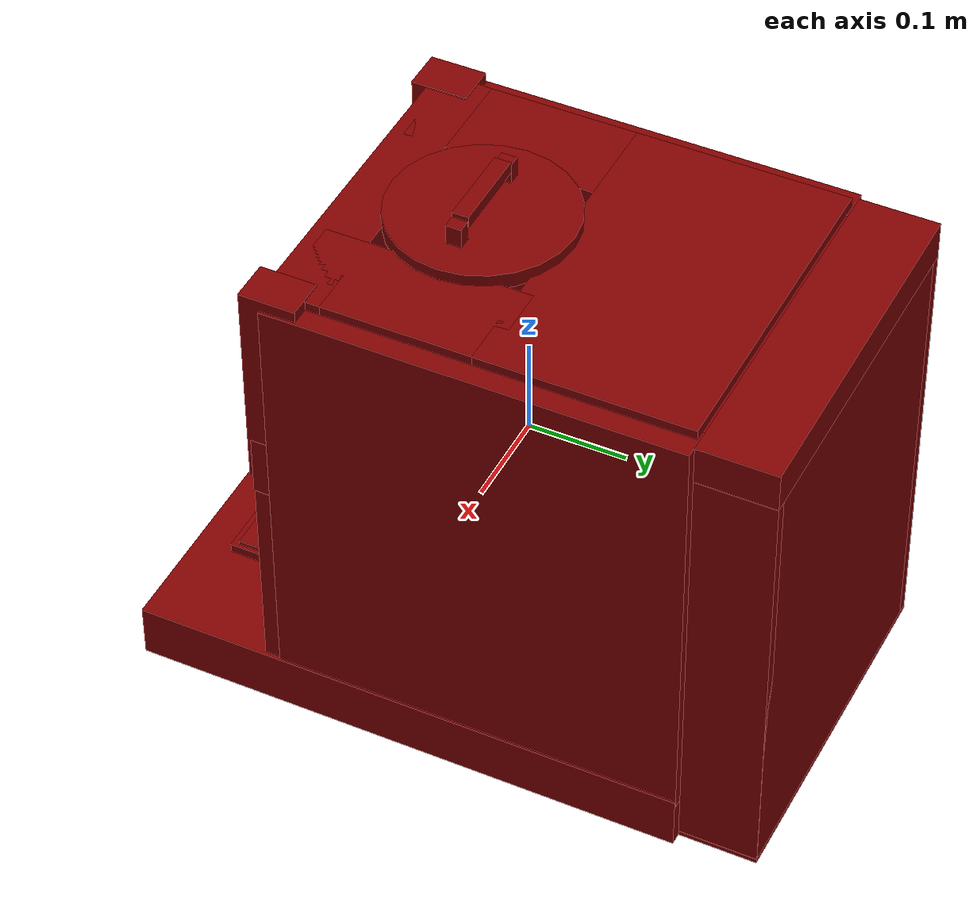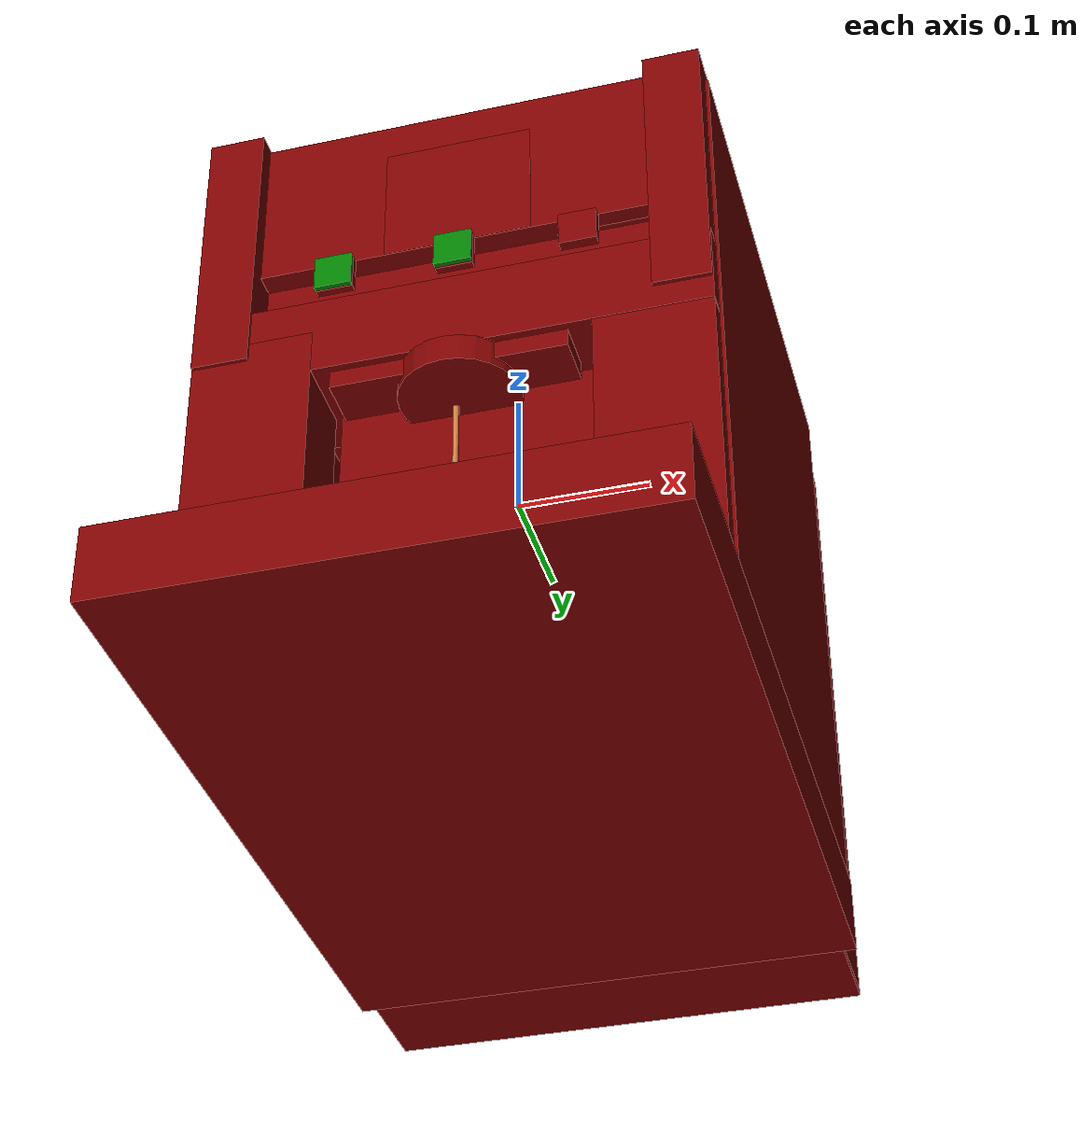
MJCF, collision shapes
<?xml version='1.0' encoding='UTF-8'?>
<mujoco model="model">
  <compiler angle="radian"/>
  <asset>
    <mesh file="visuals/Body001.obj" name="Body001_vis"/>
    <mesh file="visuals/Button001.obj" name="Button001_vis"/>
    <mesh file="visuals/Button002.obj" name="Button002_vis"/>
    <mesh file="visuals/Button003.obj" name="Button003_vis"/>
    <mesh file="visuals/Container001_Clear.obj" name="Container001_Clear_vis"/>
    <mesh file="visuals/Lid001.obj" name="Lid001_vis"/>
    <mesh file="visuals/Lid002.obj" name="Lid002_vis"/>
    <mesh file="visuals/Lid003_Clear.obj" name="Lid003_Clear_vis"/>
    <texture file="visuals/T_BC001.png" name="Body001_material" type="2d"/>
    <material name="Body001_material" rgba="1 1 1 1.0" texture="Body001_material" shininess="0.4472135901451111" specular="0.3103448502657381"/>
    <texture file="visuals/T_BC001.png" name="Button001_material" type="2d"/>
    <material name="Button001_material" rgba="1 1 1 1.0" texture="Button001_material" shininess="0.4472135901451111" specular="0.3103448502657381"/>
    <texture file="visuals/T_BC001.png" name="Button002_material" type="2d"/>
    <material name="Button002_material" rgba="1 1 1 1.0" texture="Button002_material" shininess="0.4472135901451111" specular="0.3103448502657381"/>
    <texture file="visuals/T_BC001.png" name="Button003_material" type="2d"/>
    <material name="Button003_material" rgba="1 1 1 1.0" texture="Button003_material" shininess="0.4472135901451111" specular="0.3103448502657381"/>
    <texture file="visuals/T_BC001.png" name="Container001_Clear_material" type="2d"/>
    <material name="Container001_Clear_material" rgba="1 1 1 0.15000000596046448" texture="Container001_Clear_material" shininess="0.4472135901451111" specular="0.3103448502657381"/>
    <texture file="visuals/T_BC001.png" name="Lid003_Clear_material" type="2d"/>
    <material name="Lid003_Clear_material" rgba="1 1 1 0.15000000596046448" texture="Lid003_Clear_material" shininess="0.4472135901451111" specular="0.3103448502657381"/>
    <texture file="visuals/T_BC001.png" name="Lid001_material" type="2d"/>
    <material name="Lid001_material" rgba="1 1 1 1.0" texture="Lid001_material" shininess="0.4472135901451111" specular="0.3103448502657381"/>
    <texture file="visuals/T_BC001.png" name="Lid002_material" type="2d"/>
    <material name="Lid002_material" rgba="1 1 1 1.0" texture="Lid002_material" shininess="0.4472135901451111" specular="0.3103448502657381"/>
  </asset>
  <default>
    <default class="visual">
      <geom conaffinity="0" contype="0" group="1" type="mesh"/>
    </default>
    <default class="collision">
      <geom group="0" rgba="0.5 0 0 0.5"/>
    </default>
    <default class="spawn">
      <geom group="0" rgba="1 1 1 0.5" contype="0" conaffinity="0"/>
      <site group="0" rgba="1 1 1 0.5"/>
    </default>
    <default class="region">
      <geom group="1" conaffinity="0" contype="0" rgba="0 1 0 0"/>
    </default>
  </default>
  <worldbody>
    <body>
      <body name="object">
        <geom class="collision" type="box" pos="-0.086563 -0.187611 0.091208" size="0.013755256310105324 0.0021139136515557766 0.01374596357345581" quat="1.0 0.0 0.0 0.0" name="start_button_1" rgba="0.0 0.5 0 0.5"/>
        <geom class="collision" type="box" pos="0.002858 -0.188588 0.091208" size="0.013755256310105324 0.0021139136515557766 0.01374596543610096" quat="1.0 0.0 0.0 0.0" name="start_button_2" rgba="0.0 0.5 0 0.5"/>
        <site type="cylinder" rgba="0.8 0.5 0.25 1" size="0.002001030370593071 0.07498573511838913" pos="-0.000071 -0.163692 -0.109714" name="coffee_liquid"/>
        <site rgba="0 0 0 0" size="0.009999999776482582 0.009999999776482582" pos="-0.000289 -0.162930 -0.177186" name="receptacle_place_site"/>
        <geom mesh="Body001_vis" type="mesh" solimp="0.998 0.998 0.001" solref="0.001 1" density="100" friction="0.95 0.3 0.1" class="visual" material="Body001_material"/>
        <geom class="collision" type="box" pos="0.000000 -0.040076 -0.244350" size="0.19233408570289612 0.28319981694221497 0.028330527245998383" quat="1.0 0.0 0.0 0.0"/>
        <geom class="collision" type="box" pos="0.174797 0.035413 0.001303" size="0.01573178358376026 0.20771101117134094 0.22518572211265564" quat="1.0 0.0 0.0 0.0"/>
        <geom class="collision" type="box" pos="-0.174796 0.035413 0.001303" size="0.01573178358376026 0.20771101117134094 0.22518572211265564" quat="1.0 0.0 0.0 0.0"/>
        <geom class="collision" type="box" pos="0.001155 0.236461 0.001303" size="0.15873457491397858 0.007002820260822773 0.22518184781074524" quat="1.0 0.0 0.0 0.0"/>
        <geom class="collision" type="box" pos="-0.001328 -0.150007 0.171884" size="0.1706371009349823 0.027968697249889374 0.06428945064544678" quat="1.0 0.0 0.0 0.0"/>
        <geom class="collision" type="box" pos="0.002680 -0.155918 0.084289" size="0.16319401562213898 0.005449952557682991 0.0251083355396986" quat="1.0 0.0 0.0 0.0"/>
        <geom class="collision" type="box" pos="0.000101 -0.146135 0.031793" size="0.18841195106506348 0.043483342975378036 0.03166408836841583" quat="1.0 0.0 0.0 0.0"/>
        <geom class="collision" type="box" pos="0.002459 -0.172770 0.157179" size="0.05479605123400688 0.00544998561963439 0.04907616600394249" quat="1.0 0.0 0.0 0.0"/>
        <geom class="collision" type="box" pos="-0.143798 -0.161094 -0.095797" size="0.044637471437454224 0.02883872762322426 0.13034124672412872" quat="1.0 0.0 0.0 0.0"/>
        <geom class="collision" type="box" pos="0.145507 -0.160585 -0.095797" size="0.04267963767051697 0.028329895809292793 0.13034114241600037" quat="1.0 0.0 0.0 0.0"/>
        <geom class="collision" type="cylinder" pos="0.000000 -0.154344 -0.009715" size="0.04411251097917557 0.010518781840801239" quat="1.0 0.0 0.0 0.0"/>
        <geom class="collision" type="box" pos="0.001227 -0.133621 -0.097330" size="0.09369006007909775 0.0044687227346003056 0.13034018874168396" quat="1.0 0.0 0.0 0.0"/>
        <geom class="collision" type="box" pos="-0.001328 0.134086 0.171884" size="0.1706334799528122 0.10690145939588547 0.06428945064544678" quat="1.0 0.0 0.0 0.0"/>
        <geom class="collision" type="box" pos="-0.124139 -0.062412 0.171884" size="0.04765009880065918 0.1032470166683197 0.06428945064544678" quat="1.0 0.0 0.0 0.0"/>
        <geom class="collision" type="box" pos="0.121664 -0.062412 0.171884" size="0.04754539951682091 0.1032470166683197 0.06428945064544678" quat="1.0 0.0 0.0 0.0"/>
        <geom class="collision" type="box" pos="0.000461 -0.202584 -0.186128" size="0.1050674319267273 0.06869201362133026 0.004904693458229303" quat="1.0 0.0 0.0 0.0"/>
        <geom class="collision" type="box" pos="-0.000170 -0.155834 -0.207336" size="0.08164481818675995 0.02357826754450798 0.018965760245919228" quat="1.0 0.0 0.0 0.0"/>
        <geom class="collision" type="box" pos="0.167138 -0.164632 0.128568" size="0.020944323390722275 0.028329581022262573 0.10942689329385757" quat="1.0 0.0 0.0 0.0"/>
        <geom class="collision" type="box" pos="-0.167176 -0.164632 0.128568" size="0.02094431221485138 0.02832956612110138 0.10942689329385757" quat="1.0 0.0 0.0 0.0"/>
        <geom class="collision" type="box" pos="-0.001079 -0.164632 -0.003365" size="0.08570130169391632 0.018899274989962578 0.010298472829163074" quat="1.0 0.0 0.0 0.0"/>
        <body name="Button001">
          <joint axis="0.0 1.0 0.0" pos="-0.086382 -0.180419 0.090689" limited="true" name="Button001_joint" range="0.0 0.003" type="slide" damping="1" frictionloss="1" armature=".01" stiffness="0.05"/>
          <geom mesh="Button001_vis" type="mesh" solimp="0.998 0.998 0.001" solref="0.001 1" density="100" friction="0.95 0.3 0.1" class="visual" material="Button001_material"/>
          <geom class="collision" type="box" pos="-0.086563 -0.182184 0.091208" size="0.013755256310105324 0.0027975630946457386 0.013745969161391258" quat="1.0 0.0 0.0 0.0"/>
        </body>
        <body name="Button002">
          <joint axis="0.0 1.0 0.0" pos="0.003170 -0.180419 0.090689" limited="true" name="Button002_joint" range="0.0 0.003" type="slide" damping="1" frictionloss="1" armature=".01" stiffness="0.05"/>
          <geom mesh="Button002_vis" type="mesh" solimp="0.998 0.998 0.001" solref="0.001 1" density="100" friction="0.95 0.3 0.1" class="visual" material="Button002_material"/>
          <geom class="collision" type="box" pos="0.002858 -0.182617 0.091208" size="0.013755256310105324 0.0027975630946457386 0.013745971955358982" quat="1.0 0.0 0.0 0.0"/>
        </body>
        <body name="Button003">
          <joint axis="0.0 1.0 0.0" pos="0.094031 -0.180419 0.090689" limited="true" name="Button003_joint" range="0.0 0.003" type="slide" damping="1" frictionloss="1" armature=".01" stiffness="0.05"/>
          <geom mesh="Button003_vis" type="mesh" solimp="0.998 0.998 0.001" solref="0.001 1" density="100" friction="0.95 0.3 0.1" class="visual" material="Button003_material"/>
          <geom class="collision" type="box" pos="0.093661 -0.183605 0.091208" size="0.013755256310105324 0.003861977020278573 0.013745967298746109" quat="1.0 0.0 0.0 0.0"/>
        </body>
        <body name="Container001_Clear">
          <joint axis="0.0 0.0 1.0" pos="-0.000186 0.283543 -0.038076" limited="true" name="Container001_Clear_joint" range="0.0 0.1" type="slide" damping="1" frictionloss="1" armature=".01" stiffness="0.05"/>
          <geom mesh="Container001_Clear_vis" type="mesh" solimp="0.998 0.998 0.001" solref="0.001 1" density="100" friction="0.95 0.3 0.1" class="visual" material="Container001_Clear_material"/>
          <geom class="collision" type="box" pos="-0.000463 0.283543 -0.266619" size="0.18244731426239014 0.03973284363746643 0.0036208024248480797" quat="1.0 0.0 0.0 0.0"/>
          <geom class="collision" type="box" pos="0.176480 0.283543 -0.038256" size="0.005506511311978102 0.039732880890369415 0.2268645167350769" quat="1.0 0.0 0.0 0.0"/>
          <geom class="collision" type="box" pos="-0.177326 0.283543 -0.038256" size="0.0055065155029296875 0.03973289579153061 0.22686465084552765" quat="1.0 0.0 0.0 0.0"/>
          <geom class="collision" type="box" pos="-0.000975 0.320032 -0.038256" size="0.1824076771736145 0.003243771381676197 0.2268647849559784" quat="1.0 0.0 0.0 0.0"/>
          <geom class="collision" type="box" pos="-0.000975 0.247544 -0.038256" size="0.18240781128406525 0.00324377347715199 0.22686491906642914" quat="1.0 0.0 0.0 0.0"/>
          <body name="Lid003_Clear">
            <joint axis="0.0 0.0 1.0" pos="-0.000186 0.283543 0.208016" limited="true" name="Lid003_Clear_joint" range="0.0 0.1" type="slide" damping="1" frictionloss="1" armature=".01" stiffness="0.05"/>
            <geom mesh="Lid003_Clear_vis" type="mesh" solimp="0.998 0.998 0.001" solref="0.001 1" density="100" friction="0.95 0.3 0.1" class="visual" material="Lid003_Clear_material"/>
            <geom class="collision" type="box" pos="-0.000463 0.283543 0.208411" size="0.18244796991348267 0.039732929319143295 0.01945492811501026" quat="1.0 0.0 0.0 0.0"/>
          </body>
        </body>
        <body name="Lid001">
          <joint axis="0.0 0.0 1.0" pos="0.000150 -0.045651 0.249969" limited="true" name="Lid001_joint" range="0.0 0.1" type="slide" damping="1" frictionloss="1" armature=".01" stiffness="0.05"/>
          <geom mesh="Lid001_vis" type="mesh" solimp="0.998 0.998 0.001" solref="0.001 1" density="100" friction="0.95 0.3 0.1" class="visual" material="Lid001_material"/>
          <geom class="collision" type="cylinder" pos="0.000130 -0.045920 0.239736" size="0.09157691895961761 0.008040505461394787" quat="1.0 0.0 0.0 0.0"/>
          <geom class="collision" type="box" pos="0.000000 -0.046866 0.266486" size="0.04253393039107323 0.008285203017294407 0.006194868125021458" quat="1.0 0.0 0.0 0.0"/>
          <geom class="collision" type="box" pos="-0.049781 -0.046866 0.256073" size="0.006508178077638149 0.007907992228865623 0.01211793627589941" quat="1.0 0.0 0.0 0.0"/>
          <geom class="collision" type="box" pos="0.049950 -0.046866 0.256073" size="0.006508178077638149 0.007907992228865623 0.01211793627589941" quat="1.0 0.0 0.0 0.0"/>
        </body>
        <body name="Lid002">
          <joint axis="0.0 0.0 1.0" pos="0.000584 -0.195741 -0.145059" limited="true" name="Lid002_joint" range="0.0 0.05" type="slide" damping="1" frictionloss="1" armature=".01" stiffness="0.05"/>
          <geom mesh="Lid002_vis" type="mesh" solimp="0.998 0.998 0.001" solref="0.001 1" density="100" friction="0.95 0.3 0.1" class="visual" material="Lid002_material"/>
          <geom class="collision" type="box" pos="0.001780 -0.201473 -0.178925" size="0.10001043230295181 0.062125593423843384 0.0019739093258976936" quat="1.0 0.0 0.0 0.0"/>
        </body>
        <geom class="region" name="reg_main" type="box" pos="0.0 0.0020509999999999973 0.0033694999999999975" size="0.18807 0.32006199999999996 0.2685645"/>
      </body>
    </body>
  </worldbody>
  <actuator>
    <motor name="Button001_joint_actuator" joint="Button001_joint" gear="0.5"/>
    <motor name="Button002_joint_actuator" joint="Button002_joint" gear="0.5"/>
    <motor name="Button003_joint_actuator" joint="Button003_joint" gear="0.5"/>
    <motor name="Container001_Clear_joint_actuator" joint="Container001_Clear_joint" gear="70"/>
    <motor name="Lid001_joint_actuator" joint="Lid001_joint" gear="10"/>
    <motor name="Lid002_joint_actuator" joint="Lid002_joint" gear="5"/>
    <motor name="Lid003_Clear_joint_actuator" joint="Lid003_Clear_joint" gear="20"/>
  </actuator>
</mujoco>
